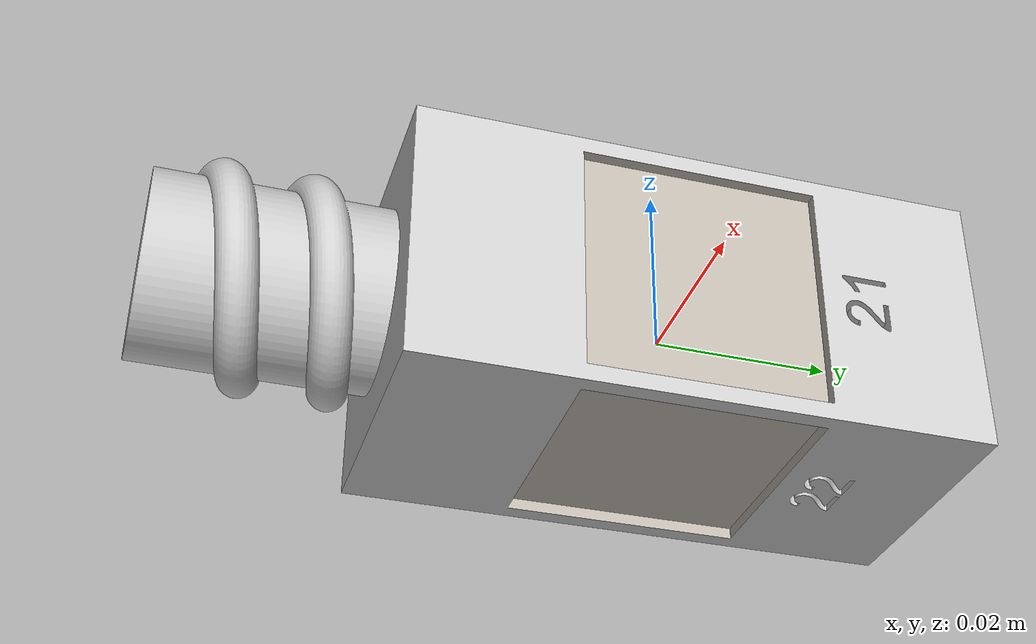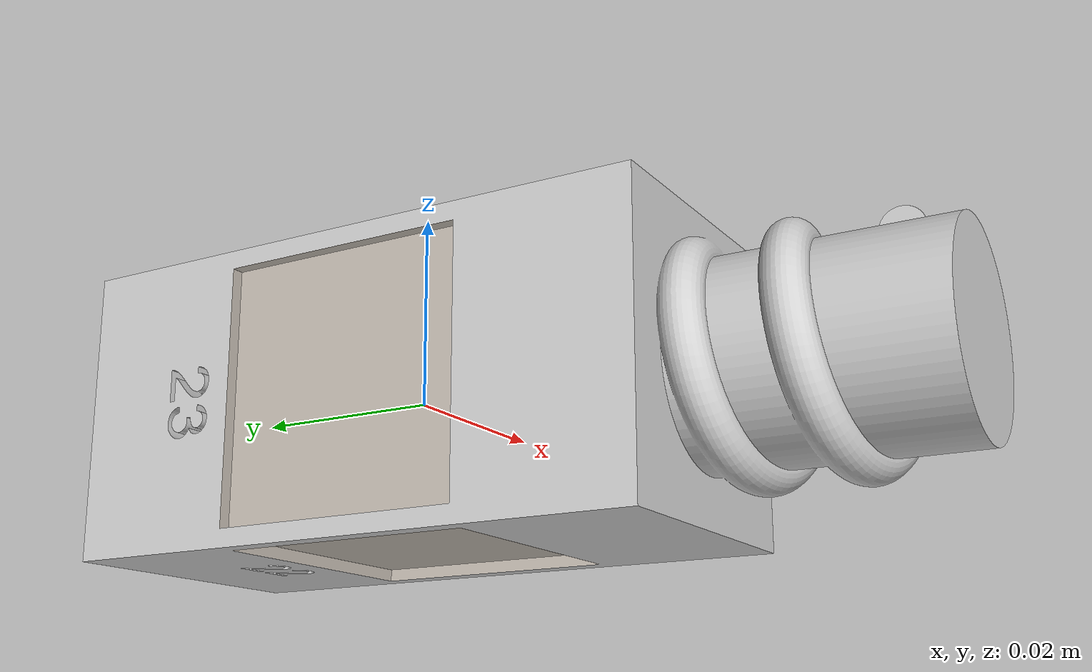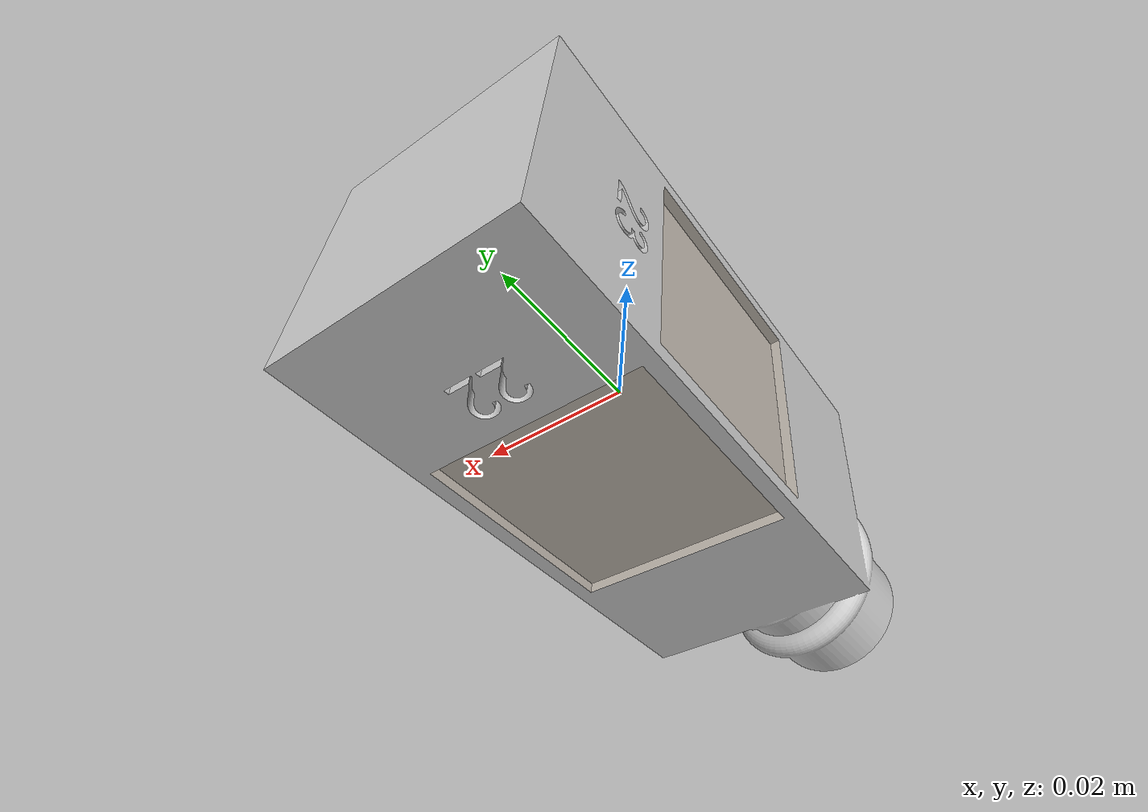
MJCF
<mujoco model="square_table_leg4">
  <default>
    <default class="visual">
      <geom group="2" type="mesh" contype="0" conaffinity="0"/>
    </default>
    <default class="collision">
      <geom group="3" type="mesh"/>
    </default>
  </default>
  <asset>
    <texture type="2d" name="tag36_11_00020" file="tag36_11_00020.png"/>
    <material name="Material" texture="tag36_11_00020" specular="0.5" shininess="0.25"/>
    <texture type="2d" name="tag36_11_00021" file="tag36_11_00021.png"/>
    <material name="Material.001" texture="tag36_11_00021" specular="0.5" shininess="0.25"/>
    <texture type="2d" name="tag36_11_00022" file="tag36_11_00022.png"/>
    <material name="Material.002" texture="tag36_11_00022" specular="0.5" shininess="0.25"/>
    <texture type="2d" name="tag36_11_00023" file="tag36_11_00023.png"/>
    <material name="Material.003" texture="tag36_11_00023" specular="0.5" shininess="0.25"/>
    <material name="Material.004" specular="0.5" shininess="0.25" rgba="0.800000 0.800000 0.800000 1.000000"/>
    <mesh file="square_table_leg4_0.obj"/>
    <mesh file="square_table_leg4_1.obj"/>
    <mesh file="square_table_leg4_2.obj"/>
    <mesh file="square_table_leg4_3.obj"/>
    <mesh file="square_table_leg4_4.obj"/>
  </asset>
  <worldbody>
    <body name="square_table_leg4">
      <freejoint/>
      <geom mesh="square_table_leg4_0" material="Material.003" class="visual"/>
      <geom mesh="square_table_leg4_1" material="Material.002" class="visual"/>
      <geom mesh="square_table_leg4_2" material="Material.001" class="visual"/>
      <geom mesh="square_table_leg4_3" material="Material" class="visual"/>
      <geom mesh="square_table_leg4_4" material="Material.004" class="visual"/>
      <geom mesh="square_table_leg4_0" class="collision"/>
      <geom mesh="square_table_leg4_1" class="collision"/>
      <geom mesh="square_table_leg4_2" class="collision"/>
      <geom mesh="square_table_leg4_3" class="collision"/>
      <geom mesh="square_table_leg4_4" class="collision"/>
    </body>
  </worldbody>
</mujoco>
